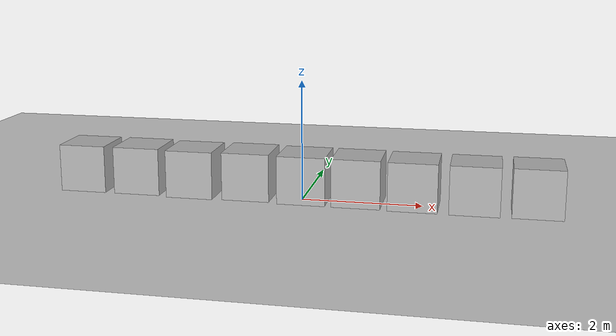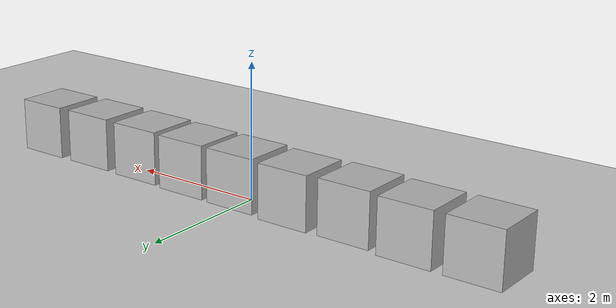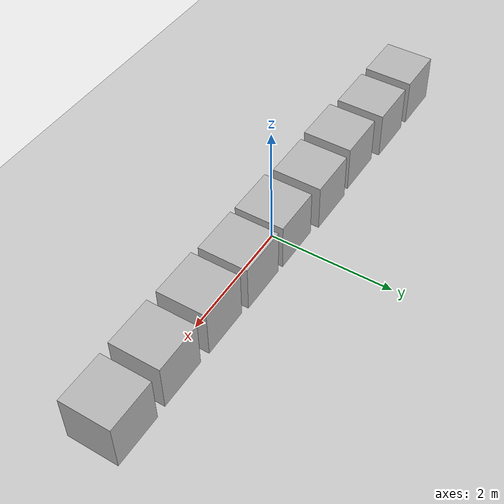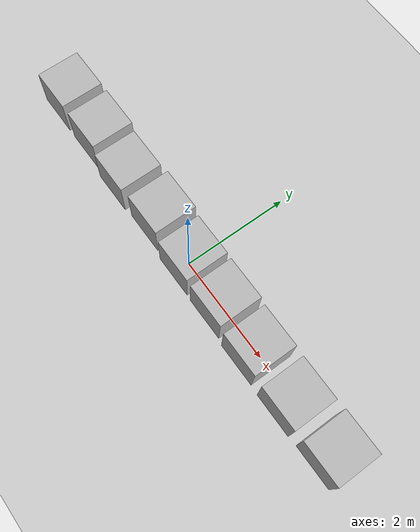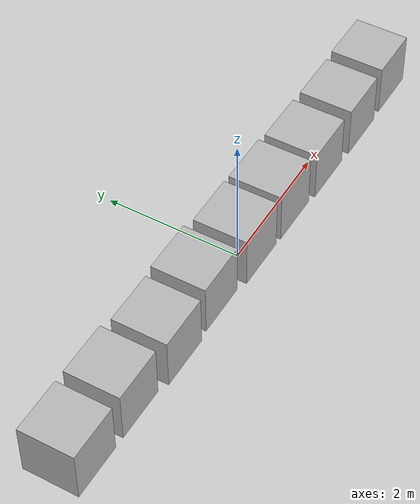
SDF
<sdf version="1.7">
 <world name="default">
  <model name="ground_plane">
   <static>1</static>
   <link name="link">
    <collision name="collision">
     <geometry><plane><normal>0 0 1</normal><size>100 100</size></plane></geometry>
     <surface>
      <contact><collide_bitmask>65535</collide_bitmask></contact>
      <friction><ode><mu>100</mu><mu2>50</mu2></ode></friction>
     </surface>
    </collision>
    <visual name="visual">
     <cast_shadows>0</cast_shadows>
     <geometry><plane><normal>0 0 1</normal><size>100 100</size></plane></geometry>
     <material>
      <script><uri>file://media/materials/scripts/gazebo.material</uri><name>Gazebo/Grey</name></script>
     </material>
    </visual>
   </link>
  </model>
  <gravity>0 0 -9.8</gravity>
  <magnetic_field>6e-06 2.3e-05 -4.2e-05</magnetic_field>
  <atmosphere type="adiabatic"/>
  <physics type="ode">
   <max_step_size>0.001</max_step_size>
   <real_time_factor>1</real_time_factor>
   <real_time_update_rate>1000</real_time_update_rate>
  </physics>
  <scene><ambient>0.4 0.4 0.4 1</ambient><background>0.7 0.7 0.7 1</background><shadows>1</shadows></scene>
  <audio><device>default</device></audio>
  <spherical_coordinates>
   <surface_model>EARTH_WGS84</surface_model>
   <latitude_deg>0</latitude_deg>
   <longitude_deg>0</longitude_deg>
   <elevation>0</elevation>
   <heading_deg>0</heading_deg>
  </spherical_coordinates>
  <model name="number5">
   <pose>0.040096 0.053684 0.4 0 -0 0</pose>
   <static>1</static>
   <link name="link">
    <visual name="visual">
     <geometry><mesh><uri>model://number1/meshes/number.dae</uri></mesh></geometry>
     <material>
      <script>
       <uri>model://number5/materials/scripts</uri>
       <uri>model://number5/materials/textures</uri>
       <name>Number/Five</name>
      </script>
     </material>
    </visual>
   </link>
  </model>
  <model name="number6">
   <pose>0.942567 0.043514 0.4 0 -0 0</pose>
   <static>1</static>
   <link name="link">
    <visual name="visual">
     <geometry><mesh><uri>model://number1/meshes/number.dae</uri></mesh></geometry>
     <material>
      <script>
       <uri>model://number6/materials/scripts</uri>
       <uri>model://number6/materials/textures</uri>
       <name>Number/Six</name>
      </script>
     </material>
    </visual>
   </link>
  </model>
  <model name="number7">
   <pose>1.85994 0.010502 0.4 0 -0 0</pose>
   <static>1</static>
   <link name="link">
    <visual name="visual">
     <geometry><mesh><uri>model://number1/meshes/number.dae</uri></mesh></geometry>
     <material>
      <script>
       <uri>model://number7/materials/scripts</uri>
       <uri>model://number7/materials/textures</uri>
       <name>Number/Seven</name>
      </script>
     </material>
    </visual>
   </link>
  </model>
  <model name="number8">
   <pose>2.83781 -0.00538 0.4 0 -0 0</pose>
   <static>1</static>
   <link name="link">
    <visual name="visual">
     <geometry><mesh><uri>model://number1/meshes/number.dae</uri></mesh></geometry>
     <material>
      <script>
       <uri>model://number8/materials/scripts</uri>
       <uri>model://number8/materials/textures</uri>
       <name>Number/Eight</name>
      </script>
     </material>
    </visual>
   </link>
  </model>
  <model name="number9">
   <pose>3.81461 0.009254 0.4 0 -0 0</pose>
   <static>1</static>
   <link name="link">
    <visual name="visual">
     <geometry><mesh><uri>model://number1/meshes/number.dae</uri></mesh></geometry>
     <material>
      <script>
       <uri>model://number9/materials/scripts</uri>
       <uri>model://number9/materials/textures</uri>
       <name>Number/Nine</name>
      </script>
     </material>
    </visual>
   </link>
  </model>
  <model name="number4">
   <pose>-0.907673 0.109081 0.4 0 -0 0</pose>
   <static>1</static>
   <link name="link">
    <visual name="visual">
     <geometry><mesh><uri>model://number1/meshes/number.dae</uri></mesh></geometry>
     <material>
      <script>
       <uri>model://number4/materials/scripts</uri>
       <uri>model://number4/materials/textures</uri>
       <name>Number/Four</name>
      </script>
     </material>
    </visual>
   </link>
  </model>
  <model name="number3">
   <pose>-1.86923 0.079655 0.4 0 -0 0</pose>
   <static>1</static>
   <link name="link">
    <visual name="visual">
     <geometry><mesh><uri>model://number1/meshes/number.dae</uri></mesh></geometry>
     <material>
      <script>
       <uri>model://number3/materials/scripts</uri>
       <uri>model://number3/materials/textures</uri>
       <name>Number/Three</name>
      </script>
     </material>
    </visual>
   </link>
  </model>
  <model name="number2">
   <pose>-2.81838 0.142266 0.4 0 -0 0</pose>
   <static>1</static>
   <link name="link">
    <visual name="visual">
     <geometry><mesh><uri>model://number1/meshes/number.dae</uri></mesh></geometry>
     <material>
      <script>
       <uri>model://number2/materials/scripts</uri>
       <uri>model://number2/materials/textures</uri>
       <name>Number/Two</name>
      </script>
     </material>
    </visual>
   </link>
  </model>
  <model name="number1">
   <pose>-3.781 0.143362 0.4 0 -0 0</pose>
   <static>1</static>
   <link name="link">
    <visual name="visual">
     <geometry><mesh><uri>model://number1/meshes/number.dae</uri></mesh></geometry>
     <material>
      <script>
       <uri>model://number1/materials/scripts</uri>
       <uri>model://number1/materials/textures</uri>
       <name>Number/One</name>
      </script>
     </material>
    </visual>
   </link>
  </model>
  <light name="user_point_light_2" type="point">
   <pose>1.83428 0.05167 1 0 -0 0</pose>
   <diffuse>0.5 0.5 0.5 1</diffuse>
   <specular>0.1 0.1 0.1 1</specular>
   <attenuation>
    <range>20</range>
    <constant>0.5</constant>
    <linear>0.01</linear>
    <quadratic>0.001</quadratic>
   </attenuation>
   <cast_shadows>0</cast_shadows>
   <direction>0 0 -1</direction>
  </light>
  <light name="user_point_light_3" type="point">
   <pose>0.931292 0.068612 1 0 -0 0</pose>
   <diffuse>0.5 0.5 0.5 1</diffuse>
   <specular>0.1 0.1 0.1 1</specular>
   <attenuation>
    <range>20</range>
    <constant>0.5</constant>
    <linear>0.01</linear>
    <quadratic>0.001</quadratic>
   </attenuation>
   <cast_shadows>0</cast_shadows>
   <direction>0 0 -1</direction>
  </light>
  <light name="user_point_light_4" type="point">
   <pose>-0.004423 0.011776 1 0 -0 0</pose>
   <diffuse>0.5 0.5 0.5 1</diffuse>
   <specular>0.1 0.1 0.1 1</specular>
   <attenuation>
    <range>20</range>
    <constant>0.5</constant>
    <linear>0.01</linear>
    <quadratic>0.001</quadratic>
   </attenuation>
   <cast_shadows>0</cast_shadows>
   <direction>0 0 -1</direction>
  </light>
  <light name="user_point_light_5" type="point">
   <pose>-0.847389 -0.070653 1 0 -0 0</pose>
   <diffuse>0.5 0.5 0.5 1</diffuse>
   <specular>0.1 0.1 0.1 1</specular>
   <attenuation>
    <range>20</range>
    <constant>0.5</constant>
    <linear>0.01</linear>
    <quadratic>0.001</quadratic>
   </attenuation>
   <cast_shadows>0</cast_shadows>
   <direction>0 0 -1</direction>
  </light>
  <light name="user_point_light_6" type="point">
   <pose>-1.79487 -0.058899 1 0 -0 0</pose>
   <diffuse>0.5 0.5 0.5 1</diffuse>
   <specular>0.1 0.1 0.1 1</specular>
   <attenuation>
    <range>20</range>
    <constant>0.5</constant>
    <linear>0.01</linear>
    <quadratic>0.001</quadratic>
   </attenuation>
   <cast_shadows>0</cast_shadows>
   <direction>0 0 -1</direction>
  </light>
 </world>
</sdf>
